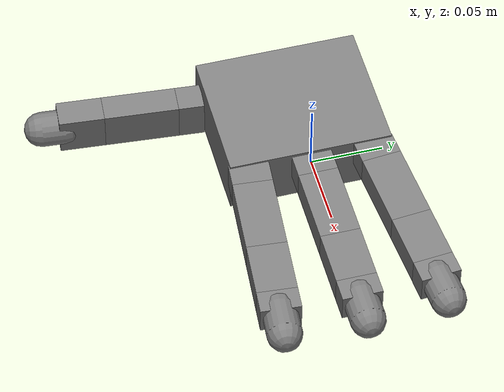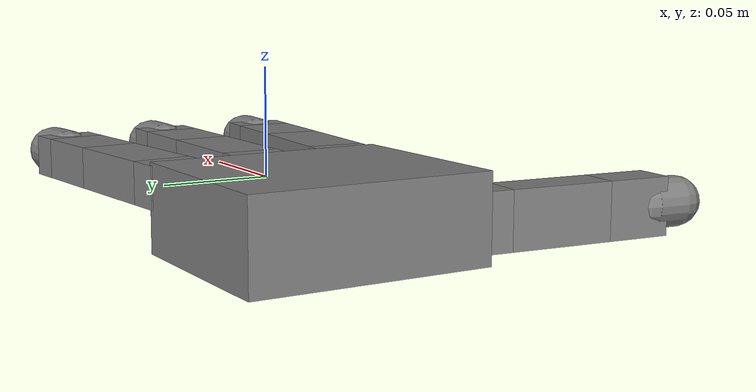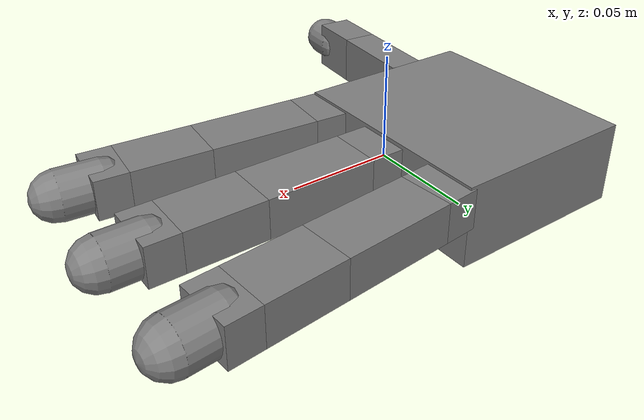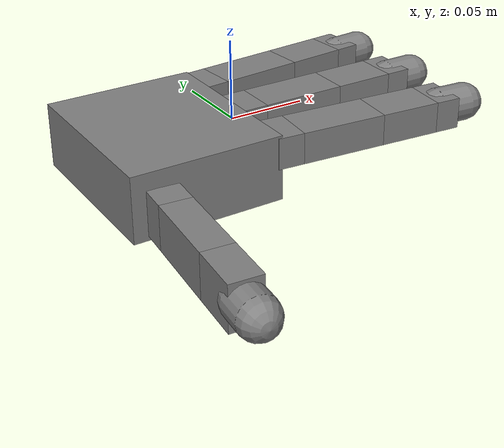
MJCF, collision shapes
<mujoco model="allegro_right">
  <compiler angle="radian"
    meshdir="../../../third_party/mujoco_menagerie/wonik_allegro/assets" autolimits="true"
    />

  <option cone="elliptic" impratio="10" gravity="0 0 0"  />

  <default>
    <default class="allegro_right">
      <joint axis="0 1 0" damping=".1"/>
      <position kp="5"/>
      <geom density="800"/>

      <default class="visual">
        <geom type="mesh" contype="0" conaffinity="0" group="2" material="black"/>
        <default class="palm_visual">
          <geom mesh="base_link"/>
        </default>
        <default class="base_visual">
          <geom mesh="link_0.0"/>
        </default>
        <default class="proximal_visual">
          <geom mesh="link_1.0"/>
        </default>
        <default class="medial_visual">
          <geom mesh="link_2.0"/>
        </default>
        <default class="distal_visual">
          <geom mesh="link_3.0"/>
        </default>
        <default class="fingertip_visual">
          <geom pos="0 0 0.0267" material="white" mesh="link_3.0_tip"/>
        </default>
        <default class="thumbtip_visual">
          <geom pos="0 0 0.0423" material="white" mesh="link_15.0_tip"/>
        </default>
      </default>

      <default class="collision">
        <geom group="3" type="box" mass="0"/>
        <default class="palm_collision">
          <geom size="0.0204 0.0565 0.0475" pos="-0.0093 0 -0.0475"/>
        </default>
        <default class="base_collision">
          <geom size="0.0098 0.01375 0.0082" pos="0 0 0.0082"/>
          <default class="thumb_base_collision">
            <geom size="0.0179 0.017 0.02275" pos="-0.0179 0.009 0.0145"/>
          </default>
        </default>
        <default class="proximal_collision">
          <geom size="0.0098 0.01375 0.027" pos="0 0 0.027"/>
          <default class="thumb_proximal_collision">
            <geom size="0.0098 0.01375 0.00885" pos="0 0 0.00885"/>
          </default>
        </default>
        <default class="medial_collision">
          <geom size="0.0098 0.01375 0.0192" pos="0 0 0.0192"/>
          <default class="thumb_medial_collision">
            <geom size="0.0098 0.01375 0.0257" pos="0 0 0.0257"/>
          </default>
        </default>
        <default class="distal_collision">
          <geom size="0.0098 0.01375 0.008" pos="0 0 0.008"/>
          <default class="thumb_distal_collision">
            <geom size="0.0098 0.01375 0.0157" pos="0 0 0.0157"/>
          </default>
        </default>
        <default class="fingertip_collision">
          <geom type="capsule" size="0.012 0.01" pos="0 0 0.019"/>
          <default class="thumbtip_collision">
            <geom type="capsule" size="0.012 0.008" pos="0 0 0.035"/>
          </default>
        </default>
      </default>

      <default class="base">
        <joint axis="0 0 1" range="-0.47 0.47"/>
        <position ctrlrange="-0.47 0.47"/>
      </default>
      <default class="proximal">
        <joint range="-0.196 1.61"/>
        <position ctrlrange="-0.196 1.61"/>
      </default>
      <default class="medial">
        <joint range="-0.174 1.709"/>
        <position ctrlrange="-0.174 1.709"/>
      </default>
      <default class="distal">
        <joint range="-0.227 1.618"/>
        <position ctrlrange="-0.227 1.618"/>
      </default>
      <default class="thumb_base">
        <joint axis="-1 0 0" range="0.263 1.396"/>
        <position ctrlrange="0.263 1.396"/>
      </default>
      <default class="thumb_proximal">
        <joint axis="0 0 1" range="-0.105 1.163"/>
        <position ctrlrange="-0.105 1.163"/>
      </default>
      <default class="thumb_medial">
        <joint range="-0.189 1.644"/>
        <position ctrlrange="-0.189 1.644"/>
      </default>
      <default class="thumb_distal">
        <joint range="-0.162 1.719"/>
        <position ctrlrange="-0.162 1.719"/>
      </default>
    </default>

    <default class="palm_slide">
      <joint limited="true" range="-1.0 1.0" actuatorfrcrange="-100000000 100000000" type="slide"
        damping="100" armature="0.01" />
      <position kp="10000" ctrlrange="-1 1" forcerange="-100000000 100000000" />
    </default>
    <default class="palm_hinge">
      <joint limited="true" range="-6.283 6.283" actuatorfrcrange="-100000000 100000000"
        type="hinge" damping="10" armature="0.01" />
      <position kp="100" ctrlrange="-6.283 6.283" forcerange="-100000000 100000000" />
    </default>

  </default>

  <asset>
    <material name="black" rgba="0.3 0.3 0.3 1"/>
    <material name="white" rgba="1.0 1.0 1.0 1"/>

    <mesh file="base_link.stl"/>
    <mesh file="link_0.0.stl"/>
    <mesh file="link_1.0.stl"/>
    <mesh file="link_2.0.stl"/>
    <mesh file="link_3.0.stl"/>
    <mesh file="link_3.0_tip.stl"/>
    <mesh file="link_12.0_right.stl"/>
    <mesh file="link_13.0.stl"/>
    <mesh file="link_14.0.stl"/>
    <mesh file="link_15.0.stl"/>
    <mesh file="link_15.0_tip.stl"/>
  </asset>

  <worldbody>
  <body name="base" gravcomp="1">
      <body name="dummy_base" gravcomp="1">
        <inertial pos="0 0 0" mass="0.001" diaginertia="0.0001 0.0001 0.0001" />
        <body name="dummy_TransXB" gravcomp="1">
          <inertial pos="0 0 0" mass="0.001" diaginertia="0.0001 0.0001 0.0001" />
          <joint name="dummy_TransXJ" class="palm_slide" pos="0 0 0" axis="1 0 0"
            actuatorfrcrange="-10000000 10000000" />
          <body name="dummy_TransYB" gravcomp="1">
            <inertial pos="0 0 0" mass="0.001" diaginertia="0.0001 0.0001 0.0001" />
            <joint name="dummy_TransYJ" class="palm_slide" pos="0 0 0" axis="0 1 0"
              actuatorfrcrange="-10000000 10000000" />
            <body name="dummy_TransZB" pos="0 0 0" gravcomp="1">
              <inertial pos="0 0 0" mass="0.001" diaginertia="0.0001 0.0001 0.0001" />
              <joint name="dummy_TransZJ" class="palm_slide" pos="0 0 0" axis="0 0 1"
                actuatorfrcrange="-10000000 10000000" />
              <body name="dummy_RotXB" gravcomp="1">
                <inertial pos="0 0 0" mass="0.001" diaginertia="0.0001 0.0001 0.0001" />
                <joint name="dummy_RotXJ" class="palm_hinge" pos="0 0 0" axis="1 0 0"
                  actuatorfrcrange="-10000000 10000000" />
                <body name="dummy_RotYB" gravcomp="1">
                  <inertial pos="0 0 0" mass="0.001" diaginertia="0.0001 0.0001 0.0001" />
                  <joint name="dummy_RotYJ" class="palm_hinge" pos="0 0 0" axis="0 1 0"
                    actuatorfrcrange="-10000000 10000000" />
                  <body name="dummy_RotZB" gravcomp="1">
                    <inertial pos="0 0 0" mass="0.001" diaginertia="0.0001 0.0001 0.0001" />
                    <joint name="dummy_RotZJ" class="palm_hinge" pos="0 0 0" axis="0 0 1"
                      actuatorfrcrange="-10000000 10000000" />

                    <body name="palm" quat="0 1 0 1" childclass="allegro_right">
                      <geom class="palm_visual" mesh="base_link"/>
                      <geom class="palm_collision"/>
                      <!-- First finger -->
                      <body name="ff_base" pos="0 0.0435 -0.001542" quat="0.999048 -0.0436194 0 0">
                        <joint name="ffj0" class="base"/>
                        <geom class="base_visual"/>
                        <geom class="base_collision"/>
                        <body name="ff_proximal" pos="0 0 0.0164">
                          <joint name="ffj1" class="proximal"/>
                          <geom class="proximal_visual"/>
                          <geom class="proximal_collision"/>
                          <body name="ff_medial" pos="0 0 0.054">
                            <joint name="ffj2" class="medial"/>
                            <geom class="medial_visual"/>
                            <geom class="medial_collision"/>
                            <body name="ff_distal" pos="0 0 0.0384">
                              <joint name="ffj3" class="distal"/>
                              <geom class="distal_visual"/>
                              <geom class="distal_collision"/>
                              <body name="ff_tip">
                                <geom class="fingertip_visual"/>
                                <geom class="fingertip_collision"/>
                              </body>
                            </body>
                          </body>
                        </body>
                      </body>
                      <!-- Middle finger -->
                      <body name="mf_base" pos="0 0 0.0007">
                        <joint name="mfj0" class="base"/>
                        <geom class="base_visual"/>
                        <geom class="base_collision"/>
                        <body name="mf_proximal" pos="0 0 0.0164">
                          <joint name="mfj1" class="proximal"/>
                          <geom class="proximal_visual"/>
                          <geom class="proximal_collision"/>
                          <body name="mf_medial" pos="0 0 0.054">
                            <joint name="mfj2" class="medial"/>
                            <geom class="medial_visual"/>
                            <geom class="medial_collision"/>
                            <body name="mf_distal" pos="0 0 0.0384">
                              <joint name="mfj3" class="distal"/>
                              <geom class="distal_visual"/>
                              <geom class="distal_collision"/>
                              <body name="mf_tip">
                                <geom class="fingertip_visual"/>
                                <geom class="fingertip_collision"/>
                              </body>
                            </body>
                          </body>
                        </body>
                      </body>
                      <!-- Ring finger -->
                      <body name="rf_base" pos="0 -0.0435 -0.001542" quat="0.999048 0.0436194 0 0">
                        <joint name="rfj0" class="base"/>
                        <geom class="base_visual"/>
                        <geom class="base_collision"/>
                        <body name="rf_proximal" pos="0 0 0.0164">
                          <joint name="rfj1" class="proximal"/>
                          <geom class="proximal_visual"/>
                          <geom class="proximal_collision"/>
                          <body name="rf_medial" pos="0 0 0.054">
                            <joint name="rfj2" class="medial"/>
                            <geom class="medial_visual"/>
                            <geom class="medial_collision"/>
                            <body name="rf_distal" pos="0 0 0.0384">
                              <joint name="rfj3" class="distal"/>
                              <geom class="distal_visual"/>
                              <geom class="distal_collision"/>
                              <body name="rf_tip">
                                <geom class="fingertip_visual"/>
                                <geom class="fingertip_collision"/>
                              </body>
                            </body>
                          </body>
                        </body>
                      </body>
                      <!-- Thumb -->
                      <body name="th_base" pos="-0.0182 0.019333 -0.045987" quat="0.477714 -0.521334 -0.521334 -0.477714">
                        <joint name="thj0" class="thumb_base"/>
                        <geom class="visual" mesh="link_12.0_right"/>
                        <geom class="thumb_base_collision"/>
                        <body name="th_proximal" pos="-0.027 0.005 0.0399">
                          <joint name="thj1" class="thumb_proximal"/>
                          <geom class="visual" mesh="link_13.0"/>
                          <geom class="thumb_proximal_collision"/>
                          <body name="th_medial" pos="0 0 0.0177">
                            <joint name="thj2" class="thumb_medial"/>
                            <geom class="visual" mesh="link_14.0"/>
                            <geom class="thumb_medial_collision"/>
                            <body name="th_distal" pos="0 0 0.0514">
                              <joint name="thj3" class="thumb_distal"/>
                              <geom class="visual" mesh="link_15.0"/>
                              <geom class="thumb_distal_collision"/>
                              <body name="th_tip">
                                <geom class="thumbtip_visual"/>
                                <geom class="thumbtip_collision"/>
                              </body>
                            </body>
                          </body>
                        </body>
                      </body>
                    </body>
                  </body>
                </body>
              </body>
            </body>
          </body>
        </body>
      </body>
    </body>
  </worldbody>

  <contact>
    <exclude body1="palm" body2="ff_base"/>
    <exclude body1="palm" body2="mf_base"/>
    <exclude body1="palm" body2="rf_base"/>
    <exclude body1="palm" body2="th_base"/>
    <exclude body1="palm" body2="th_proximal"/>
  </contact>

  <actuator>
    <position name="dummy_TransXA" joint="dummy_TransXJ" class="palm_slide" ctrlrange="-1 1" />
    <position name="dummy_TransYA" joint="dummy_TransYJ" class="palm_slide" ctrlrange="-1 1" />
    <position name="dummy_TransZA" joint="dummy_TransZJ" class="palm_slide" ctrlrange="-1 1" />
    <position name="dummy_RotXA" joint="dummy_RotXJ" class="palm_hinge" />
    <position name="dummy_RotYA" joint="dummy_RotYJ" class="palm_hinge" />
    <position name="dummy_RotZA" joint="dummy_RotZJ" class="palm_hinge" />

    <position name="ffa0" joint="ffj0" class="base"/>
    <position name="ffa1" joint="ffj1" class="proximal"/>
    <position name="ffa2" joint="ffj2" class="medial"/>
    <position name="ffa3" joint="ffj3" class="distal"/>
    <position name="mfa0" joint="mfj0" class="base"/>
    <position name="mfa1" joint="mfj1" class="proximal"/>
    <position name="mfa2" joint="mfj2" class="medial"/>
    <position name="mfa3" joint="mfj3" class="distal"/>
    <position name="rfa0" joint="rfj0" class="base"/>
    <position name="rfa1" joint="rfj1" class="proximal"/>
    <position name="rfa2" joint="rfj2" class="medial"/>
    <position name="rfa3" joint="rfj3" class="distal"/>
    <position name="tha0" joint="thj0" class="thumb_base"/>
    <position name="tha1" joint="thj1" class="thumb_proximal"/>
    <position name="tha2" joint="thj2" class="thumb_medial"/>
    <position name="tha3" joint="thj3" class="thumb_distal"/>
  </actuator>
</mujoco>
